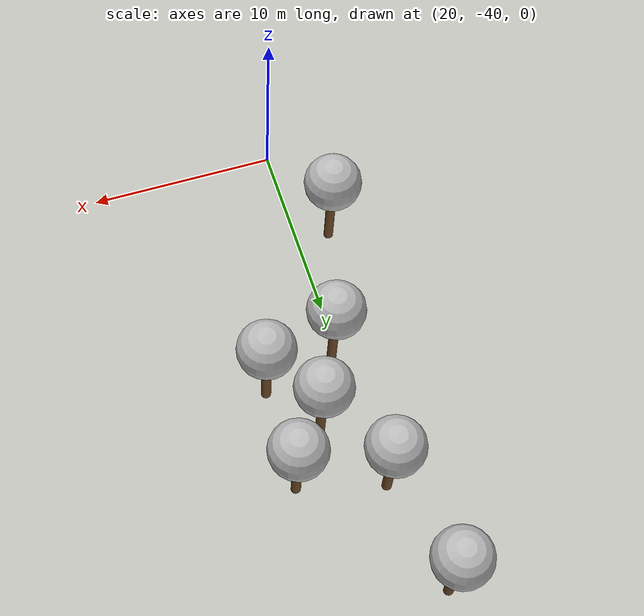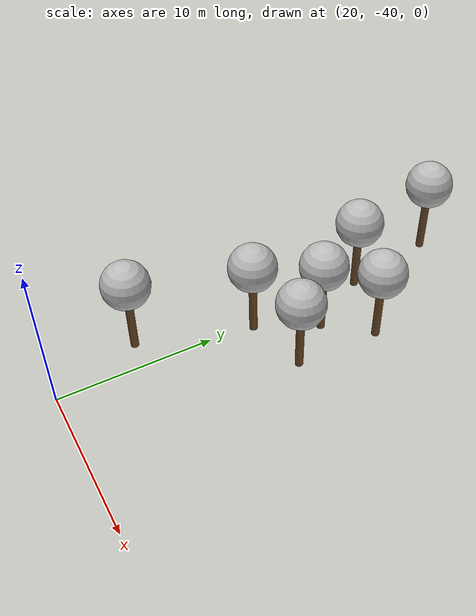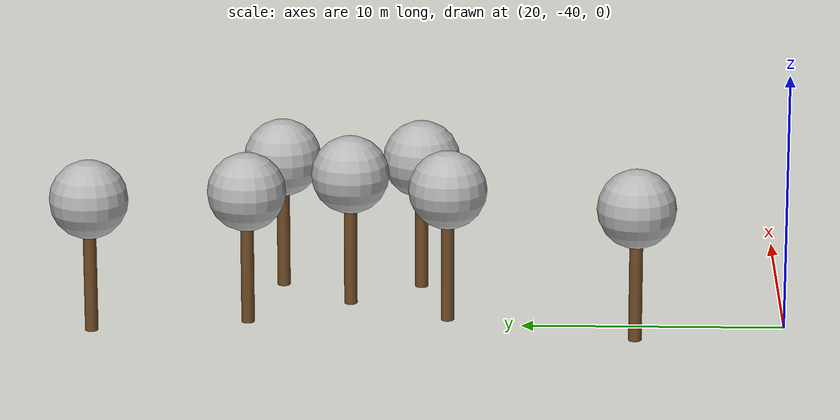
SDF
<sdf version="1.7">
 <world name="default">
  <model name="tree_red">
   <static>1</static>
   <link name="link">
    <pose>0 0 0.1 0 -0 0</pose>
    <inertial>
     <mass>666</mass>
     <inertia>
      <ixx>0.0861167</ixx>
      <ixy>0</ixy>
      <ixz>0</ixz>
      <iyy>0.0861167</iyy>
      <iyz>0</iyz>
      <izz>0.0861167</izz>
     </inertia>
    </inertial>
    <collision name="collision_trunk">
     <pose>0 0 2 0 -0 0</pose>
     <geometry><cylinder><radius>0.25</radius><length>4</length></cylinder></geometry>
     <surface>
      <contact>
       <poissons_ratio>0.347</poissons_ratio>
       <elastic_modulus>8.8e+09</elastic_modulus>
       <ode><kp>100000</kp><kd>100</kd><max_vel>100</max_vel><min_depth>0.001</min_depth></ode>
      </contact>
      <friction>
       <torsional>
        <coefficient>1</coefficient>
        <use_patch_radius>0</use_patch_radius>
        <surface_radius>0.01</surface_radius>
       </torsional>
      </friction>
     </surface>
    </collision>
    <collision name="collision_treetop">
     <pose>0 0 5.2 0 -0 0</pose>
     <geometry><sphere><radius>1.5</radius></sphere></geometry>
     <surface>
      <contact>
       <poissons_ratio>0.347</poissons_ratio>
       <elastic_modulus>8.8e+09</elastic_modulus>
       <ode><kp>100000</kp><kd>100</kd><max_vel>100</max_vel><min_depth>0.001</min_depth></ode>
      </contact>
      <friction>
       <torsional>
        <coefficient>1</coefficient>
        <use_patch_radius>0</use_patch_radius>
        <surface_radius>0.01</surface_radius>
       </torsional>
      </friction>
     </surface>
    </collision>
    <visual name="trunk">
     <pose>0 0 2 0 -0 0</pose>
     <geometry><cylinder><radius>0.25</radius><length>4</length></cylinder></geometry>
     <material>
      <script>
       <uri>model://MRS_tree_simples_fire/scripts</uri>
       <uri>model://MRS_tree_simples_fire/materials/textures</uri>
       <name>MRS_tree_simples_fire/Trunk</name>
      </script>
     </material>
    </visual>
    <visual name="treetop">
     <pose>0 0 5.2 0 -0 0</pose>
     <geometry><sphere><radius>1.5</radius></sphere></geometry>
     <material>
      <script>
       <uri>model://MRS_tree_simples_fire/scripts</uri>
       <uri>model://MRS_tree_simples_fire/materials/textures</uri>
       <name>MRS_tree_simples_fire/Treetop</name>
      </script>
     </material>
    </visual>
   </link>
   <pose>24.359 -20.6884 0 0 -0 0</pose>
  </model>
  <model name="tree_red_1">
   <static>1</static>
   <link name="link">
    <pose>0 0 0.1 0 -0 0</pose>
    <inertial>
     <mass>666</mass>
     <inertia>
      <ixx>0.0861167</ixx>
      <ixy>0</ixy>
      <ixz>0</ixz>
      <iyy>0.0861167</iyy>
      <iyz>0</iyz>
      <izz>0.0861167</izz>
     </inertia>
    </inertial>
    <collision name="collision_trunk">
     <pose>0 0 2 0 -0 0</pose>
     <geometry><cylinder><radius>0.25</radius><length>4</length></cylinder></geometry>
     <surface>
      <contact>
       <poissons_ratio>0.347</poissons_ratio>
       <elastic_modulus>8.8e+09</elastic_modulus>
       <ode><kp>100000</kp><kd>100</kd><max_vel>100</max_vel><min_depth>0.001</min_depth></ode>
      </contact>
      <friction>
       <torsional>
        <coefficient>1</coefficient>
        <use_patch_radius>0</use_patch_radius>
        <surface_radius>0.01</surface_radius>
       </torsional>
      </friction>
     </surface>
    </collision>
    <collision name="collision_treetop">
     <pose>0 0 5.2 0 -0 0</pose>
     <geometry><sphere><radius>1.5</radius></sphere></geometry>
     <surface>
      <contact>
       <poissons_ratio>0.347</poissons_ratio>
       <elastic_modulus>8.8e+09</elastic_modulus>
       <ode><kp>100000</kp><kd>100</kd><max_vel>100</max_vel><min_depth>0.001</min_depth></ode>
      </contact>
      <friction>
       <torsional>
        <coefficient>1</coefficient>
        <use_patch_radius>0</use_patch_radius>
        <surface_radius>0.01</surface_radius>
       </torsional>
      </friction>
     </surface>
    </collision>
    <visual name="trunk">
     <pose>0 0 2 0 -0 0</pose>
     <geometry><cylinder><radius>0.25</radius><length>4</length></cylinder></geometry>
     <material>
      <script>
       <uri>model://MRS_tree_simples_fire/scripts</uri>
       <uri>model://MRS_tree_simples_fire/materials/textures</uri>
       <name>MRS_tree_simples_fire/Trunk</name>
      </script>
     </material>
    </visual>
    <visual name="treetop">
     <pose>0 0 5.2 0 -0 0</pose>
     <geometry><sphere><radius>1.5</radius></sphere></geometry>
     <material>
      <script>
       <uri>model://MRS_tree_simples_fire/scripts</uri>
       <uri>model://MRS_tree_simples_fire/materials/textures</uri>
       <name>MRS_tree_simples_fire/Treetop</name>
      </script>
     </material>
    </visual>
   </link>
   <pose>24.2791 -26.082 0 0 -0 0</pose>
  </model>
  <model name="tree_red_2">
   <static>1</static>
   <link name="link">
    <pose>0 0 0.1 0 -0 0</pose>
    <inertial>
     <mass>666</mass>
     <inertia>
      <ixx>0.0861167</ixx>
      <ixy>0</ixy>
      <ixz>0</ixz>
      <iyy>0.0861167</iyy>
      <iyz>0</iyz>
      <izz>0.0861167</izz>
     </inertia>
    </inertial>
    <collision name="collision_trunk">
     <pose>0 0 2 0 -0 0</pose>
     <geometry><cylinder><radius>0.25</radius><length>4</length></cylinder></geometry>
     <surface>
      <contact>
       <poissons_ratio>0.347</poissons_ratio>
       <elastic_modulus>8.8e+09</elastic_modulus>
       <ode><kp>100000</kp><kd>100</kd><max_vel>100</max_vel><min_depth>0.001</min_depth></ode>
      </contact>
      <friction>
       <torsional>
        <coefficient>1</coefficient>
        <use_patch_radius>0</use_patch_radius>
        <surface_radius>0.01</surface_radius>
       </torsional>
      </friction>
     </surface>
    </collision>
    <collision name="collision_treetop">
     <pose>0 0 5.2 0 -0 0</pose>
     <geometry><sphere><radius>1.5</radius></sphere></geometry>
     <surface>
      <contact>
       <poissons_ratio>0.347</poissons_ratio>
       <elastic_modulus>8.8e+09</elastic_modulus>
       <ode><kp>100000</kp><kd>100</kd><max_vel>100</max_vel><min_depth>0.001</min_depth></ode>
      </contact>
      <friction>
       <torsional>
        <coefficient>1</coefficient>
        <use_patch_radius>0</use_patch_radius>
        <surface_radius>0.01</surface_radius>
       </torsional>
      </friction>
     </surface>
    </collision>
    <visual name="trunk">
     <pose>0 0 2 0 -0 0</pose>
     <geometry><cylinder><radius>0.25</radius><length>4</length></cylinder></geometry>
     <material>
      <script>
       <uri>model://MRS_tree_simples_fire/scripts</uri>
       <uri>model://MRS_tree_simples_fire/materials/textures</uri>
       <name>MRS_tree_simples_fire/Trunk</name>
      </script>
     </material>
    </visual>
    <visual name="treetop">
     <pose>0 0 5.2 0 -0 0</pose>
     <geometry><sphere><radius>1.5</radius></sphere></geometry>
     <material>
      <script>
       <uri>model://MRS_tree_simples_fire/scripts</uri>
       <uri>model://MRS_tree_simples_fire/materials/textures</uri>
       <name>MRS_tree_simples_fire/Treetop</name>
      </script>
     </material>
    </visual>
   </link>
   <pose>22.223 -23.394 0 0 -0 0</pose>
  </model>
  <model name="tree_yellow_4">
   <static>1</static>
   <link name="link">
    <pose>0 0 0.1 0 -0 0</pose>
    <inertial>
     <mass>666</mass>
     <inertia>
      <ixx>0.0861167</ixx>
      <ixy>0</ixy>
      <ixz>0</ixz>
      <iyy>0.0861167</iyy>
      <iyz>0</iyz>
      <izz>0.0861167</izz>
     </inertia>
    </inertial>
    <collision name="collision_trunk">
     <pose>0 0 2 0 -0 0</pose>
     <geometry><cylinder><radius>0.25</radius><length>4</length></cylinder></geometry>
     <surface>
      <contact>
       <poissons_ratio>0.347</poissons_ratio>
       <elastic_modulus>8.8e+09</elastic_modulus>
       <ode><kp>100000</kp><kd>100</kd><max_vel>100</max_vel><min_depth>0.001</min_depth></ode>
      </contact>
      <friction>
       <torsional>
        <coefficient>1</coefficient>
        <use_patch_radius>0</use_patch_radius>
        <surface_radius>0.01</surface_radius>
       </torsional>
      </friction>
     </surface>
    </collision>
    <collision name="collision_treetop">
     <pose>0 0 5.2 0 -0 0</pose>
     <geometry><sphere><radius>1.5</radius></sphere></geometry>
     <surface>
      <contact>
       <poissons_ratio>0.347</poissons_ratio>
       <elastic_modulus>8.8e+09</elastic_modulus>
       <ode><kp>100000</kp><kd>100</kd><max_vel>100</max_vel><min_depth>0.001</min_depth></ode>
      </contact>
      <friction>
       <torsional>
        <coefficient>1</coefficient>
        <use_patch_radius>0</use_patch_radius>
        <surface_radius>0.01</surface_radius>
       </torsional>
      </friction>
     </surface>
    </collision>
    <visual name="trunk">
     <pose>0 0 2 0 -0 0</pose>
     <geometry><cylinder><radius>0.25</radius><length>4</length></cylinder></geometry>
     <material>
      <script>
       <uri>model://MRS_tree_simples_close/scripts</uri>
       <uri>model://MRS_tree_simples_close/materials/textures</uri>
       <name>MRS_tree_simples_close/Trunk</name>
      </script>
     </material>
    </visual>
    <visual name="treetop">
     <pose>0 0 5.2 0 -0 0</pose>
     <geometry><sphere><radius>1.5</radius></sphere></geometry>
     <material>
      <script>
       <uri>model://MRS_tree_simples_close/scripts</uri>
       <uri>model://MRS_tree_simples_close/materials/textures</uri>
       <name>MRS_tree_simples_close/Treetop</name>
      </script>
     </material>
    </visual>
   </link>
   <pose>19.9624 -19.5565 0 0 -0 0</pose>
  </model>
  <model name="tree_yellow_5">
   <static>1</static>
   <link name="link">
    <pose>0 0 0.1 0 -0 0</pose>
    <inertial>
     <mass>666</mass>
     <inertia>
      <ixx>0.0861167</ixx>
      <ixy>0</ixy>
      <ixz>0</ixz>
      <iyy>0.0861167</iyy>
      <iyz>0</iyz>
      <izz>0.0861167</izz>
     </inertia>
    </inertial>
    <collision name="collision_trunk">
     <pose>0 0 2 0 -0 0</pose>
     <geometry><cylinder><radius>0.25</radius><length>4</length></cylinder></geometry>
     <surface>
      <contact>
       <poissons_ratio>0.347</poissons_ratio>
       <elastic_modulus>8.8e+09</elastic_modulus>
       <ode><kp>100000</kp><kd>100</kd><max_vel>100</max_vel><min_depth>0.001</min_depth></ode>
      </contact>
      <friction>
       <torsional>
        <coefficient>1</coefficient>
        <use_patch_radius>0</use_patch_radius>
        <surface_radius>0.01</surface_radius>
       </torsional>
      </friction>
     </surface>
    </collision>
    <collision name="collision_treetop">
     <pose>0 0 5.2 0 -0 0</pose>
     <geometry><sphere><radius>1.5</radius></sphere></geometry>
     <surface>
      <contact>
       <poissons_ratio>0.347</poissons_ratio>
       <elastic_modulus>8.8e+09</elastic_modulus>
       <ode><kp>100000</kp><kd>100</kd><max_vel>100</max_vel><min_depth>0.001</min_depth></ode>
      </contact>
      <friction>
       <torsional>
        <coefficient>1</coefficient>
        <use_patch_radius>0</use_patch_radius>
        <surface_radius>0.01</surface_radius>
       </torsional>
      </friction>
     </surface>
    </collision>
    <visual name="trunk">
     <pose>0 0 2 0 -0 0</pose>
     <geometry><cylinder><radius>0.25</radius><length>4</length></cylinder></geometry>
     <material>
      <script>
       <uri>model://MRS_tree_simples_close/scripts</uri>
       <uri>model://MRS_tree_simples_close/materials/textures</uri>
       <name>MRS_tree_simples_close/Trunk</name>
      </script>
     </material>
    </visual>
    <visual name="treetop">
     <pose>0 0 5.2 0 -0 0</pose>
     <geometry><sphere><radius>1.5</radius></sphere></geometry>
     <material>
      <script>
       <uri>model://MRS_tree_simples_close/scripts</uri>
       <uri>model://MRS_tree_simples_close/materials/textures</uri>
       <name>MRS_tree_simples_close/Treetop</name>
      </script>
     </material>
    </visual>
   </link>
   <pose>20.375 -27.1699 0 0 -0 0</pose>
  </model>
  <model name="tree_green_7">
   <static>1</static>
   <link name="link">
    <pose>0 0 0.1 0 -0 0</pose>
    <inertial>
     <mass>666</mass>
     <inertia>
      <ixx>0.0861167</ixx>
      <ixy>0</ixy>
      <ixz>0</ixz>
      <iyy>0.0861167</iyy>
      <iyz>0</iyz>
      <izz>0.0861167</izz>
     </inertia>
    </inertial>
    <collision name="collision_trunk">
     <pose>0 0 2 0 -0 0</pose>
     <geometry><cylinder><radius>0.25</radius><length>4</length></cylinder></geometry>
     <surface>
      <contact>
       <poissons_ratio>0.347</poissons_ratio>
       <elastic_modulus>8.8e+09</elastic_modulus>
       <ode><kp>100000</kp><kd>100</kd><max_vel>100</max_vel><min_depth>0.001</min_depth></ode>
      </contact>
      <friction>
       <torsional>
        <coefficient>1</coefficient>
        <use_patch_radius>0</use_patch_radius>
        <surface_radius>0.01</surface_radius>
       </torsional>
      </friction>
     </surface>
    </collision>
    <collision name="collision_treetop">
     <pose>0 0 5.2 0 -0 0</pose>
     <geometry><sphere><radius>1.5</radius></sphere></geometry>
     <surface>
      <contact>
       <poissons_ratio>0.347</poissons_ratio>
       <elastic_modulus>8.8e+09</elastic_modulus>
       <ode><kp>100000</kp><kd>100</kd><max_vel>100</max_vel><min_depth>0.001</min_depth></ode>
      </contact>
      <friction>
       <torsional>
        <coefficient>1</coefficient>
        <use_patch_radius>0</use_patch_radius>
        <surface_radius>0.01</surface_radius>
       </torsional>
      </friction>
     </surface>
    </collision>
    <visual name="trunk">
     <pose>0 0 2 0 -0 0</pose>
     <geometry><cylinder><radius>0.25</radius><length>4</length></cylinder></geometry>
     <material>
      <script>
       <uri>model://MRS_tree_simple/scripts</uri>
       <uri>model://MRS_tree_simple/materials/textures</uri>
       <name>MRS_tree_simple/Trunk</name>
      </script>
     </material>
    </visual>
    <visual name="treetop">
     <pose>0 0 5.2 0 -0 0</pose>
     <geometry><sphere><radius>1.5</radius></sphere></geometry>
     <material>
      <script>
       <uri>model://MRS_tree_simple/scripts</uri>
       <uri>model://MRS_tree_simple/materials/textures</uri>
       <name>MRS_tree_simple/Treetop</name>
      </script>
     </material>
    </visual>
   </link>
   <pose>18.8726 -13.6723 0 0 -0 0</pose>
  </model>
  <model name="tree_green_13">
   <static>1</static>
   <link name="link">
    <pose>0 0 0.1 0 -0 0</pose>
    <inertial>
     <mass>666</mass>
     <inertia>
      <ixx>0.0861167</ixx>
      <ixy>0</ixy>
      <ixz>0</ixz>
      <iyy>0.0861167</iyy>
      <iyz>0</iyz>
      <izz>0.0861167</izz>
     </inertia>
    </inertial>
    <collision name="collision_trunk">
     <pose>0 0 2 0 -0 0</pose>
     <geometry><cylinder><radius>0.25</radius><length>4</length></cylinder></geometry>
     <surface>
      <contact>
       <poissons_ratio>0.347</poissons_ratio>
       <elastic_modulus>8.8e+09</elastic_modulus>
       <ode><kp>100000</kp><kd>100</kd><max_vel>100</max_vel><min_depth>0.001</min_depth></ode>
      </contact>
      <friction>
       <torsional>
        <coefficient>1</coefficient>
        <use_patch_radius>0</use_patch_radius>
        <surface_radius>0.01</surface_radius>
       </torsional>
      </friction>
     </surface>
    </collision>
    <collision name="collision_treetop">
     <pose>0 0 5.2 0 -0 0</pose>
     <geometry><sphere><radius>1.5</radius></sphere></geometry>
     <surface>
      <contact>
       <poissons_ratio>0.347</poissons_ratio>
       <elastic_modulus>8.8e+09</elastic_modulus>
       <ode><kp>100000</kp><kd>100</kd><max_vel>100</max_vel><min_depth>0.001</min_depth></ode>
      </contact>
      <friction>
       <torsional>
        <coefficient>1</coefficient>
        <use_patch_radius>0</use_patch_radius>
        <surface_radius>0.01</surface_radius>
       </torsional>
      </friction>
     </surface>
    </collision>
    <visual name="trunk">
     <pose>0 0 2 0 -0 0</pose>
     <geometry><cylinder><radius>0.25</radius><length>4</length></cylinder></geometry>
     <material>
      <script>
       <uri>model://MRS_tree_simple/scripts</uri>
       <uri>model://MRS_tree_simple/materials/textures</uri>
       <name>MRS_tree_simple/Trunk</name>
      </script>
     </material>
    </visual>
    <visual name="treetop">
     <pose>0 0 5.2 0 -0 0</pose>
     <geometry><sphere><radius>1.5</radius></sphere></geometry>
     <material>
      <script>
       <uri>model://MRS_tree_simple/scripts</uri>
       <uri>model://MRS_tree_simple/materials/textures</uri>
       <name>MRS_tree_simple/Treetop</name>
      </script>
     </material>
    </visual>
   </link>
   <pose>18.2368 -34.2871 0 0 -0 0</pose>
  </model>
 </world>
</sdf>
